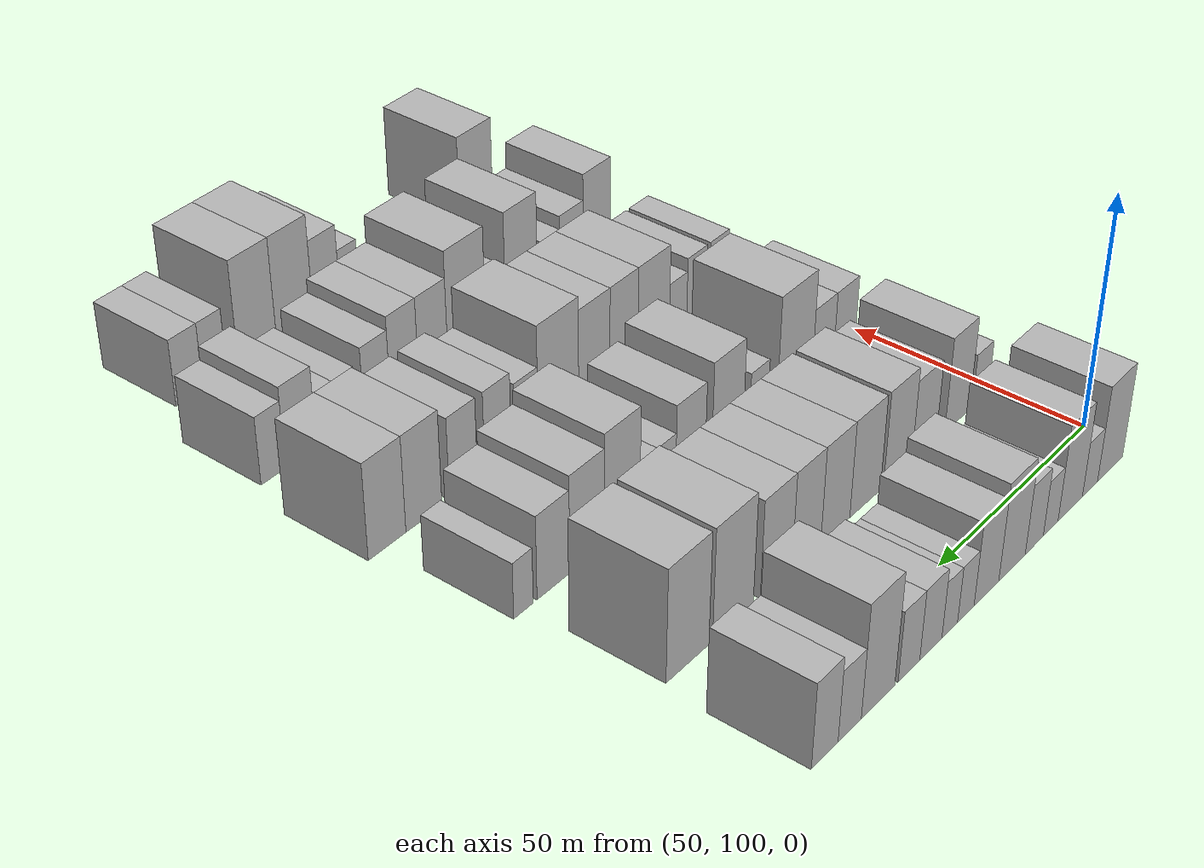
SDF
<sdf version="1.6">
 <world name="default">
  <model name="building_70">
   <static>1</static>
   <pose>50.0000 108.4797 0 0.000000 0.000000 0.000000</pose>
   <link name="link">
    <pose>0 0 10.50 0 0 0</pose>
    <collision name="collision"><geometry><box><size>20.0000 9.2453 21.0000</size></box></geometry></collision>
    <visual name="visual">
     <cast_shadows>0</cast_shadows>
     <geometry><box><size>20.0000 9.2453 21.0000</size></box></geometry>
     <material>
      <script>
       <uri>model://HANNAS_wall/materials/scripts</uri>
       <uri>model://HANNAS_wall/materials/textures</uri>
       <name>vrc/HANNAS_wall</name>
      </script>
     </material>
    </visual>
   </link>
  </model>
  <model name="building_71">
   <static>1</static>
   <pose>50.0000 115.8319 0 0.000000 0.000000 0.000000</pose>
   <link name="link">
    <pose>0 0 6.00 0 0 0</pose>
    <collision name="collision"><geometry><box><size>20.0000 5.4591 12.0000</size></box></geometry></collision>
    <visual name="visual">
     <cast_shadows>0</cast_shadows>
     <geometry><box><size>20.0000 5.4591 12.0000</size></box></geometry>
     <material>
      <script>
       <uri>model://HANNAS_wall/materials/scripts</uri>
       <uri>model://HANNAS_wall/materials/textures</uri>
       <name>vrc/HANNAS_wall</name>
      </script>
     </material>
    </visual>
   </link>
  </model>
  <model name="building_72">
   <static>1</static>
   <pose>50.0000 122.8837 0 0.000000 0.000000 0.000000</pose>
   <link name="link">
    <pose>0 0 10.50 0 0 0</pose>
    <collision name="collision"><geometry><box><size>20.0000 8.6444 21.0000</size></box></geometry></collision>
    <visual name="visual">
     <cast_shadows>0</cast_shadows>
     <geometry><box><size>20.0000 8.6444 21.0000</size></box></geometry>
     <material>
      <script>
       <uri>model://HANNAS_wall/materials/scripts</uri>
       <uri>model://HANNAS_wall/materials/textures</uri>
       <name>vrc/HANNAS_wall</name>
      </script>
     </material>
    </visual>
   </link>
  </model>
  <model name="building_73">
   <static>1</static>
   <pose>50.0000 129.7595 0 0.000000 0.000000 0.000000</pose>
   <link name="link">
    <pose>0 0 6.00 0 0 0</pose>
    <collision name="collision"><geometry><box><size>20.0000 5.1073 12.0000</size></box></geometry></collision>
    <visual name="visual">
     <cast_shadows>0</cast_shadows>
     <geometry><box><size>20.0000 5.1073 12.0000</size></box></geometry>
     <material>
      <script>
       <uri>model://HANNAS_wall/materials/scripts</uri>
       <uri>model://HANNAS_wall/materials/textures</uri>
       <name>vrc/HANNAS_wall</name>
      </script>
     </material>
    </visual>
   </link>
  </model>
  <model name="building_74">
   <static>1</static>
   <pose>50.0000 135.3687 0 0.000000 0.000000 0.000000</pose>
   <link name="link">
    <pose>0 0 7.50 0 0 0</pose>
    <collision name="collision"><geometry><box><size>20.0000 6.1111 15.0000</size></box></geometry></collision>
    <visual name="visual">
     <cast_shadows>0</cast_shadows>
     <geometry><box><size>20.0000 6.1111 15.0000</size></box></geometry>
     <material>
      <script>
       <uri>model://HANNAS_wall/materials/scripts</uri>
       <uri>model://HANNAS_wall/materials/textures</uri>
       <name>vrc/HANNAS_wall</name>
      </script>
     </material>
    </visual>
   </link>
  </model>
  <model name="building_75">
   <static>1</static>
   <pose>50.0000 142.8387 0 0.000000 0.000000 0.000000</pose>
   <link name="link">
    <pose>0 0 10.50 0 0 0</pose>
    <collision name="collision"><geometry><box><size>20.0000 8.8288 21.0000</size></box></geometry></collision>
    <visual name="visual">
     <cast_shadows>0</cast_shadows>
     <geometry><box><size>20.0000 8.8288 21.0000</size></box></geometry>
     <material>
      <script>
       <uri>model://HANNAS_wall/materials/scripts</uri>
       <uri>model://HANNAS_wall/materials/textures</uri>
       <name>vrc/HANNAS_wall</name>
      </script>
     </material>
    </visual>
   </link>
  </model>
  <model name="building_76">
   <static>1</static>
   <pose>50.0000 151.2692 0 0.000000 0.000000 0.000000</pose>
   <link name="link">
    <pose>0 0 9.00 0 0 0</pose>
    <collision name="collision"><geometry><box><size>20.0000 8.0323 18.0000</size></box></geometry></collision>
    <visual name="visual">
     <cast_shadows>0</cast_shadows>
     <geometry><box><size>20.0000 8.0323 18.0000</size></box></geometry>
     <material>
      <script>
       <uri>model://HANNAS_wall/materials/scripts</uri>
       <uri>model://HANNAS_wall/materials/textures</uri>
       <name>vrc/HANNAS_wall</name>
      </script>
     </material>
    </visual>
   </link>
  </model>
  <model name="building_77">
   <static>1</static>
   <pose>50.0000 157.8927 0 0.000000 0.000000 0.000000</pose>
   <link name="link">
    <pose>0 0 6.00 0 0 0</pose>
    <collision name="collision"><geometry><box><size>20.0000 5.2147 12.0000</size></box></geometry></collision>
    <visual name="visual">
     <cast_shadows>0</cast_shadows>
     <geometry><box><size>20.0000 5.2147 12.0000</size></box></geometry>
     <material>
      <script>
       <uri>model://HANNAS_wall/materials/scripts</uri>
       <uri>model://HANNAS_wall/materials/textures</uri>
       <name>vrc/HANNAS_wall</name>
      </script>
     </material>
    </visual>
   </link>
  </model>
  <model name="building_78">
   <static>1</static>
   <pose>50.0000 162.9480 0 0.000000 0.000000 0.000000</pose>
   <link name="link">
    <pose>0 0 6.00 0 0 0</pose>
    <collision name="collision"><geometry><box><size>20.0000 4.8960 12.0000</size></box></geometry></collision>
    <visual name="visual">
     <cast_shadows>0</cast_shadows>
     <geometry><box><size>20.0000 4.8960 12.0000</size></box></geometry>
     <material>
      <script>
       <uri>model://HANNAS_wall/materials/scripts</uri>
       <uri>model://HANNAS_wall/materials/textures</uri>
       <name>vrc/HANNAS_wall</name>
      </script>
     </material>
    </visual>
   </link>
  </model>
  <model name="building_79">
   <static>1</static>
   <pose>50.0000 168.7888 0 0.000000 0.000000 0.000000</pose>
   <link name="link">
    <pose>0 0 7.50 0 0 0</pose>
    <collision name="collision"><geometry><box><size>20.0000 6.7857 15.0000</size></box></geometry></collision>
    <visual name="visual">
     <cast_shadows>0</cast_shadows>
     <geometry><box><size>20.0000 6.7857 15.0000</size></box></geometry>
     <material>
      <script>
       <uri>model://HANNAS_wall/materials/scripts</uri>
       <uri>model://HANNAS_wall/materials/textures</uri>
       <name>vrc/HANNAS_wall</name>
      </script>
     </material>
    </visual>
   </link>
  </model>
  <model name="building_80">
   <static>1</static>
   <pose>50.0000 175.4133 0 0.000000 0.000000 0.000000</pose>
   <link name="link">
    <pose>0 0 7.50 0 0 0</pose>
    <collision name="collision"><geometry><box><size>20.0000 6.4632 15.0000</size></box></geometry></collision>
    <visual name="visual">
     <cast_shadows>0</cast_shadows>
     <geometry><box><size>20.0000 6.4632 15.0000</size></box></geometry>
     <material>
      <script>
       <uri>model://HANNAS_wall/materials/scripts</uri>
       <uri>model://HANNAS_wall/materials/textures</uri>
       <name>vrc/HANNAS_wall</name>
      </script>
     </material>
    </visual>
   </link>
  </model>
  <model name="building_81">
   <static>1</static>
   <pose>50.0000 184.4984 0 0.000000 0.000000 0.000000</pose>
   <link name="link">
    <pose>0 0 12.00 0 0 0</pose>
    <collision name="collision"><geometry><box><size>20.0000 9.7070 24.0000</size></box></geometry></collision>
    <visual name="visual">
     <cast_shadows>0</cast_shadows>
     <geometry><box><size>20.0000 9.7070 24.0000</size></box></geometry>
     <material>
      <script>
       <uri>model://HANNAS_wall/materials/scripts</uri>
       <uri>model://HANNAS_wall/materials/textures</uri>
       <name>vrc/HANNAS_wall</name>
      </script>
     </material>
    </visual>
   </link>
  </model>
  <model name="building_82">
   <static>1</static>
   <pose>50.0000 192.6373 0 0.000000 0.000000 0.000000</pose>
   <link name="link">
    <pose>0 0 7.50 0 0 0</pose>
    <collision name="collision"><geometry><box><size>20.0000 6.5709 15.0000</size></box></geometry></collision>
    <visual name="visual">
     <cast_shadows>0</cast_shadows>
     <geometry><box><size>20.0000 6.5709 15.0000</size></box></geometry>
     <material>
      <script>
       <uri>model://HANNAS_wall/materials/scripts</uri>
       <uri>model://HANNAS_wall/materials/textures</uri>
       <name>vrc/HANNAS_wall</name>
      </script>
     </material>
    </visual>
   </link>
  </model>
  <model name="building_83">
   <static>1</static>
   <pose>50.0000 199.5949 0 0.000000 0.000000 0.000000</pose>
   <link name="link">
    <pose>0 0 9.00 0 0 0</pose>
    <collision name="collision"><geometry><box><size>20.0000 7.3442 18.0000</size></box></geometry></collision>
    <visual name="visual">
     <cast_shadows>0</cast_shadows>
     <geometry><box><size>20.0000 7.3442 18.0000</size></box></geometry>
     <material>
      <script>
       <uri>model://HANNAS_wall/materials/scripts</uri>
       <uri>model://HANNAS_wall/materials/textures</uri>
       <name>vrc/HANNAS_wall</name>
      </script>
     </material>
    </visual>
   </link>
  </model>
  <model name="building_183">
   <static>1</static>
   <pose>79.0000 105.0208 0 0.000000 0.000000 0.000000</pose>
   <link name="link">
    <pose>0 0 6.00 0 0 0</pose>
    <collision name="collision"><geometry><box><size>20.0000 5.7940 12.0000</size></box></geometry></collision>
    <visual name="visual">
     <cast_shadows>0</cast_shadows>
     <geometry><box><size>20.0000 5.7940 12.0000</size></box></geometry>
     <material>
      <script>
       <uri>model://HANNAS_wall/materials/scripts</uri>
       <uri>model://HANNAS_wall/materials/textures</uri>
       <name>vrc/HANNAS_wall</name>
      </script>
     </material>
    </visual>
   </link>
  </model>
  <model name="building_184">
   <static>1</static>
   <pose>79.0000 113.2284 0 0.000000 0.000000 0.000000</pose>
   <link name="link">
    <pose>0 0 10.50 0 0 0</pose>
    <collision name="collision"><geometry><box><size>20.0000 8.6211 21.0000</size></box></geometry></collision>
    <visual name="visual">
     <cast_shadows>0</cast_shadows>
     <geometry><box><size>20.0000 8.6211 21.0000</size></box></geometry>
     <material>
      <script>
       <uri>model://HANNAS_wall/materials/scripts</uri>
       <uri>model://HANNAS_wall/materials/textures</uri>
       <name>vrc/HANNAS_wall</name>
      </script>
     </material>
    </visual>
   </link>
  </model>
  <model name="building_185">
   <static>1</static>
   <pose>79.0000 124.6637 0 0.000000 0.000000 0.000000</pose>
   <link name="link">
    <pose>0 0 9.00 0 0 0</pose>
    <collision name="collision"><geometry><box><size>20.0000 8.2496 18.0000</size></box></geometry></collision>
    <visual name="visual">
     <cast_shadows>0</cast_shadows>
     <geometry><box><size>20.0000 8.2496 18.0000</size></box></geometry>
     <material>
      <script>
       <uri>model://HANNAS_wall/materials/scripts</uri>
       <uri>model://HANNAS_wall/materials/textures</uri>
       <name>vrc/HANNAS_wall</name>
      </script>
     </material>
    </visual>
   </link>
  </model>
  <model name="building_186">
   <static>1</static>
   <pose>79.0000 133.4465 0 0.000000 0.000000 0.000000</pose>
   <link name="link">
    <pose>0 0 10.50 0 0 0</pose>
    <collision name="collision"><geometry><box><size>20.0000 9.3159 21.0000</size></box></geometry></collision>
    <visual name="visual">
     <cast_shadows>0</cast_shadows>
     <geometry><box><size>20.0000 9.3159 21.0000</size></box></geometry>
     <material>
      <script>
       <uri>model://HANNAS_wall/materials/scripts</uri>
       <uri>model://HANNAS_wall/materials/textures</uri>
       <name>vrc/HANNAS_wall</name>
      </script>
     </material>
    </visual>
   </link>
  </model>
  <model name="building_187">
   <static>1</static>
   <pose>79.0000 143.9744 0 0.000000 0.000000 0.000000</pose>
   <link name="link">
    <pose>0 0 10.50 0 0 0</pose>
    <collision name="collision"><geometry><box><size>20.0000 9.7400 21.0000</size></box></geometry></collision>
    <visual name="visual">
     <cast_shadows>0</cast_shadows>
     <geometry><box><size>20.0000 9.7400 21.0000</size></box></geometry>
     <material>
      <script>
       <uri>model://HANNAS_wall/materials/scripts</uri>
       <uri>model://HANNAS_wall/materials/textures</uri>
       <name>vrc/HANNAS_wall</name>
      </script>
     </material>
    </visual>
   </link>
  </model>
  <model name="building_188">
   <static>1</static>
   <pose>79.0000 153.3531 0 0.000000 0.000000 0.000000</pose>
   <link name="link">
    <pose>0 0 10.50 0 0 0</pose>
    <collision name="collision"><geometry><box><size>20.0000 9.0175 21.0000</size></box></geometry></collision>
    <visual name="visual">
     <cast_shadows>0</cast_shadows>
     <geometry><box><size>20.0000 9.0175 21.0000</size></box></geometry>
     <material>
      <script>
       <uri>model://HANNAS_wall/materials/scripts</uri>
       <uri>model://HANNAS_wall/materials/textures</uri>
       <name>vrc/HANNAS_wall</name>
      </script>
     </material>
    </visual>
   </link>
  </model>
  <model name="building_189">
   <static>1</static>
   <pose>79.0000 162.2272 0 0.000000 0.000000 0.000000</pose>
   <link name="link">
    <pose>0 0 10.50 0 0 0</pose>
    <collision name="collision"><geometry><box><size>20.0000 8.7307 21.0000</size></box></geometry></collision>
    <visual name="visual">
     <cast_shadows>0</cast_shadows>
     <geometry><box><size>20.0000 8.7307 21.0000</size></box></geometry>
     <material>
      <script>
       <uri>model://HANNAS_wall/materials/scripts</uri>
       <uri>model://HANNAS_wall/materials/textures</uri>
       <name>vrc/HANNAS_wall</name>
      </script>
     </material>
    </visual>
   </link>
  </model>
  <model name="building_190">
   <static>1</static>
   <pose>79.0000 171.2394 0 0.000000 0.000000 0.000000</pose>
   <link name="link">
    <pose>0 0 10.50 0 0 0</pose>
    <collision name="collision"><geometry><box><size>20.0000 9.2937 21.0000</size></box></geometry></collision>
    <visual name="visual">
     <cast_shadows>0</cast_shadows>
     <geometry><box><size>20.0000 9.2937 21.0000</size></box></geometry>
     <material>
      <script>
       <uri>model://HANNAS_wall/materials/scripts</uri>
       <uri>model://HANNAS_wall/materials/textures</uri>
       <name>vrc/HANNAS_wall</name>
      </script>
     </material>
    </visual>
   </link>
  </model>
  <model name="building_191">
   <static>1</static>
   <pose>79.0000 183.6266 0 0.000000 0.000000 0.000000</pose>
   <link name="link">
    <pose>0 0 12.00 0 0 0</pose>
    <collision name="collision"><geometry><box><size>20.0000 11.4806 24.0000</size></box></geometry></collision>
    <visual name="visual">
     <cast_shadows>0</cast_shadows>
     <geometry><box><size>20.0000 11.4806 24.0000</size></box></geometry>
     <material>
      <script>
       <uri>model://HANNAS_wall/materials/scripts</uri>
       <uri>model://HANNAS_wall/materials/textures</uri>
       <name>vrc/HANNAS_wall</name>
      </script>
     </material>
    </visual>
   </link>
  </model>
  <model name="building_192">
   <static>1</static>
   <pose>79.0000 196.1666 0 0.000000 0.000000 0.000000</pose>
   <link name="link">
    <pose>0 0 12.00 0 0 0</pose>
    <collision name="collision"><geometry><box><size>20.0000 11.5995 24.0000</size></box></geometry></collision>
    <visual name="visual">
     <cast_shadows>0</cast_shadows>
     <geometry><box><size>20.0000 11.5995 24.0000</size></box></geometry>
     <material>
      <script>
       <uri>model://HANNAS_wall/materials/scripts</uri>
       <uri>model://HANNAS_wall/materials/textures</uri>
       <name>vrc/HANNAS_wall</name>
      </script>
     </material>
    </visual>
   </link>
  </model>
  <model name="building_298">
   <static>1</static>
   <pose>108.0000 106.9651 0 0.000000 0.000000 0.000000</pose>
   <link name="link">
    <pose>0 0 7.50 0 0 0</pose>
    <collision name="collision"><geometry><box><size>20.0000 7.3845 15.0000</size></box></geometry></collision>
    <visual name="visual">
     <cast_shadows>0</cast_shadows>
     <geometry><box><size>20.0000 7.3845 15.0000</size></box></geometry>
     <material>
      <script>
       <uri>model://HANNAS_wall/materials/scripts</uri>
       <uri>model://HANNAS_wall/materials/textures</uri>
       <name>vrc/HANNAS_wall</name>
      </script>
     </material>
    </visual>
   </link>
  </model>
  <model name="building_299">
   <static>1</static>
   <pose>108.0000 114.3063 0 0.000000 0.000000 0.000000</pose>
   <link name="link">
    <pose>0 0 7.50 0 0 0</pose>
    <collision name="collision"><geometry><box><size>20.0000 7.2978 15.0000</size></box></geometry></collision>
    <visual name="visual">
     <cast_shadows>0</cast_shadows>
     <geometry><box><size>20.0000 7.2978 15.0000</size></box></geometry>
     <material>
      <script>
       <uri>model://HANNAS_wall/materials/scripts</uri>
       <uri>model://HANNAS_wall/materials/textures</uri>
       <name>vrc/HANNAS_wall</name>
      </script>
     </material>
    </visual>
   </link>
  </model>
  <model name="building_300">
   <static>1</static>
   <pose>108.0000 123.7310 0 0.000000 0.000000 0.000000</pose>
   <link name="link">
    <pose>0 0 12.00 0 0 0</pose>
    <collision name="collision"><geometry><box><size>20.0000 11.5516 24.0000</size></box></geometry></collision>
    <visual name="visual">
     <cast_shadows>0</cast_shadows>
     <geometry><box><size>20.0000 11.5516 24.0000</size></box></geometry>
     <material>
      <script>
       <uri>model://HANNAS_wall/materials/scripts</uri>
       <uri>model://HANNAS_wall/materials/textures</uri>
       <name>vrc/HANNAS_wall</name>
      </script>
     </material>
    </visual>
   </link>
  </model>
  <model name="building_301">
   <static>1</static>
   <pose>108.0000 135.4316 0 0.000000 0.000000 0.000000</pose>
   <link name="link">
    <pose>0 0 6.00 0 0 0</pose>
    <collision name="collision"><geometry><box><size>20.0000 5.8496 12.0000</size></box></geometry></collision>
    <visual name="visual">
     <cast_shadows>0</cast_shadows>
     <geometry><box><size>20.0000 5.8496 12.0000</size></box></geometry>
     <material>
      <script>
       <uri>model://HANNAS_wall/materials/scripts</uri>
       <uri>model://HANNAS_wall/materials/textures</uri>
       <name>vrc/HANNAS_wall</name>
      </script>
     </material>
    </visual>
   </link>
  </model>
  <model name="building_302">
   <static>1</static>
   <pose>108.0000 145.2150 0 0.000000 0.000000 0.000000</pose>
   <link name="link">
    <pose>0 0 10.50 0 0 0</pose>
    <collision name="collision"><geometry><box><size>20.0000 9.7173 21.0000</size></box></geometry></collision>
    <visual name="visual">
     <cast_shadows>0</cast_shadows>
     <geometry><box><size>20.0000 9.7173 21.0000</size></box></geometry>
     <material>
      <script>
       <uri>model://HANNAS_wall/materials/scripts</uri>
       <uri>model://HANNAS_wall/materials/textures</uri>
       <name>vrc/HANNAS_wall</name>
      </script>
     </material>
    </visual>
   </link>
  </model>
  <model name="building_303">
   <static>1</static>
   <pose>108.0000 156.4955 0 0.000000 0.000000 0.000000</pose>
   <link name="link">
    <pose>0 0 9.00 0 0 0</pose>
    <collision name="collision"><geometry><box><size>20.0000 8.8435 18.0000</size></box></geometry></collision>
    <visual name="visual">
     <cast_shadows>0</cast_shadows>
     <geometry><box><size>20.0000 8.8435 18.0000</size></box></geometry>
     <material>
      <script>
       <uri>model://HANNAS_wall/materials/scripts</uri>
       <uri>model://HANNAS_wall/materials/textures</uri>
       <name>vrc/HANNAS_wall</name>
      </script>
     </material>
    </visual>
   </link>
  </model>
  <model name="building_304">
   <static>1</static>
   <pose>108.0000 163.6061 0 0.000000 0.000000 0.000000</pose>
   <link name="link">
    <pose>0 0 6.00 0 0 0</pose>
    <collision name="collision"><geometry><box><size>20.0000 5.3777 12.0000</size></box></geometry></collision>
    <visual name="visual">
     <cast_shadows>0</cast_shadows>
     <geometry><box><size>20.0000 5.3777 12.0000</size></box></geometry>
     <material>
      <script>
       <uri>model://HANNAS_wall/materials/scripts</uri>
       <uri>model://HANNAS_wall/materials/textures</uri>
       <name>vrc/HANNAS_wall</name>
      </script>
     </material>
    </visual>
   </link>
  </model>
  <model name="building_305">
   <static>1</static>
   <pose>108.0000 168.7678 0 0.000000 0.000000 0.000000</pose>
   <link name="link">
    <pose>0 0 6.00 0 0 0</pose>
    <collision name="collision"><geometry><box><size>20.0000 4.9457 12.0000</size></box></geometry></collision>
    <visual name="visual">
     <cast_shadows>0</cast_shadows>
     <geometry><box><size>20.0000 4.9457 12.0000</size></box></geometry>
     <material>
      <script>
       <uri>model://HANNAS_wall/materials/scripts</uri>
       <uri>model://HANNAS_wall/materials/textures</uri>
       <name>vrc/HANNAS_wall</name>
      </script>
     </material>
    </visual>
   </link>
  </model>
  <model name="building_306">
   <static>1</static>
   <pose>108.0000 176.2402 0 0.000000 0.000000 0.000000</pose>
   <link name="link">
    <pose>0 0 12.00 0 0 0</pose>
    <collision name="collision"><geometry><box><size>20.0000 9.9991 24.0000</size></box></geometry></collision>
    <visual name="visual">
     <cast_shadows>0</cast_shadows>
     <geometry><box><size>20.0000 9.9991 24.0000</size></box></geometry>
     <material>
      <script>
       <uri>model://HANNAS_wall/materials/scripts</uri>
       <uri>model://HANNAS_wall/materials/textures</uri>
       <name>vrc/HANNAS_wall</name>
      </script>
     </material>
    </visual>
   </link>
  </model>
  <model name="building_307">
   <static>1</static>
   <pose>108.0000 185.9538 0 0.000000 0.000000 0.000000</pose>
   <link name="link">
    <pose>0 0 10.50 0 0 0</pose>
    <collision name="collision"><geometry><box><size>20.0000 9.4281 21.0000</size></box></geometry></collision>
    <visual name="visual">
     <cast_shadows>0</cast_shadows>
     <geometry><box><size>20.0000 9.4281 21.0000</size></box></geometry>
     <material>
      <script>
       <uri>model://HANNAS_wall/materials/scripts</uri>
       <uri>model://HANNAS_wall/materials/textures</uri>
       <name>vrc/HANNAS_wall</name>
      </script>
     </material>
    </visual>
   </link>
  </model>
  <model name="building_308">
   <static>1</static>
   <pose>108.0000 195.0118 0 0.000000 0.000000 0.000000</pose>
   <link name="link">
    <pose>0 0 9.00 0 0 0</pose>
    <collision name="collision"><geometry><box><size>20.0000 8.6878 18.0000</size></box></geometry></collision>
    <visual name="visual">
     <cast_shadows>0</cast_shadows>
     <geometry><box><size>20.0000 8.6878 18.0000</size></box></geometry>
     <material>
      <script>
       <uri>model://HANNAS_wall/materials/scripts</uri>
       <uri>model://HANNAS_wall/materials/textures</uri>
       <name>vrc/HANNAS_wall</name>
      </script>
     </material>
    </visual>
   </link>
  </model>
  <model name="building_309">
   <static>1</static>
   <pose>108.0000 202.8847 0 0.000000 0.000000 0.000000</pose>
   <link name="link">
    <pose>0 0 6.00 0 0 0</pose>
    <collision name="collision"><geometry><box><size>20.0000 5.0580 12.0000</size></box></geometry></collision>
    <visual name="visual">
     <cast_shadows>0</cast_shadows>
     <geometry><box><size>20.0000 5.0580 12.0000</size></box></geometry>
     <material>
      <script>
       <uri>model://HANNAS_wall/materials/scripts</uri>
       <uri>model://HANNAS_wall/materials/textures</uri>
       <name>vrc/HANNAS_wall</name>
      </script>
     </material>
    </visual>
   </link>
  </model>
  <model name="building_405">
   <static>1</static>
   <pose>137.0000 108.3462 0 0.000000 0.000000 0.000000</pose>
   <link name="link">
    <pose>0 0 7.50 0 0 0</pose>
    <collision name="collision"><geometry><box><size>20.0000 6.1600 15.0000</size></box></geometry></collision>
    <visual name="visual">
     <cast_shadows>0</cast_shadows>
     <geometry><box><size>20.0000 6.1600 15.0000</size></box></geometry>
     <material>
      <script>
       <uri>model://HANNAS_wall/materials/scripts</uri>
       <uri>model://HANNAS_wall/materials/textures</uri>
       <name>vrc/HANNAS_wall</name>
      </script>
     </material>
    </visual>
   </link>
  </model>
  <model name="building_406">
   <static>1</static>
   <pose>137.0000 115.5920 0 0.000000 0.000000 0.000000</pose>
   <link name="link">
    <pose>0 0 7.50 0 0 0</pose>
    <collision name="collision"><geometry><box><size>20.0000 6.3317 15.0000</size></box></geometry></collision>
    <visual name="visual">
     <cast_shadows>0</cast_shadows>
     <geometry><box><size>20.0000 6.3317 15.0000</size></box></geometry>
     <material>
      <script>
       <uri>model://HANNAS_wall/materials/scripts</uri>
       <uri>model://HANNAS_wall/materials/textures</uri>
       <name>vrc/HANNAS_wall</name>
      </script>
     </material>
    </visual>
   </link>
  </model>
  <model name="building_407">
   <static>1</static>
   <pose>137.0000 121.5778 0 0.000000 0.000000 0.000000</pose>
   <link name="link">
    <pose>0 0 6.00 0 0 0</pose>
    <collision name="collision"><geometry><box><size>20.0000 5.6400 12.0000</size></box></geometry></collision>
    <visual name="visual">
     <cast_shadows>0</cast_shadows>
     <geometry><box><size>20.0000 5.6400 12.0000</size></box></geometry>
     <material>
      <script>
       <uri>model://HANNAS_wall/materials/scripts</uri>
       <uri>model://HANNAS_wall/materials/textures</uri>
       <name>vrc/HANNAS_wall</name>
      </script>
     </material>
    </visual>
   </link>
  </model>
  <model name="building_408">
   <static>1</static>
   <pose>137.0000 129.3278 0 0.000000 0.000000 0.000000</pose>
   <link name="link">
    <pose>0 0 10.50 0 0 0</pose>
    <collision name="collision"><geometry><box><size>20.0000 9.8599 21.0000</size></box></geometry></collision>
    <visual name="visual">
     <cast_shadows>0</cast_shadows>
     <geometry><box><size>20.0000 9.8599 21.0000</size></box></geometry>
     <material>
      <script>
       <uri>model://HANNAS_wall/materials/scripts</uri>
       <uri>model://HANNAS_wall/materials/textures</uri>
       <name>vrc/HANNAS_wall</name>
      </script>
     </material>
    </visual>
   </link>
  </model>
  <model name="building_409">
   <static>1</static>
   <pose>137.0000 138.5922 0 0.000000 0.000000 0.000000</pose>
   <link name="link">
    <pose>0 0 10.50 0 0 0</pose>
    <collision name="collision"><geometry><box><size>20.0000 8.6690 21.0000</size></box></geometry></collision>
    <visual name="visual">
     <cast_shadows>0</cast_shadows>
     <geometry><box><size>20.0000 8.6690 21.0000</size></box></geometry>
     <material>
      <script>
       <uri>model://HANNAS_wall/materials/scripts</uri>
       <uri>model://HANNAS_wall/materials/textures</uri>
       <name>vrc/HANNAS_wall</name>
      </script>
     </material>
    </visual>
   </link>
  </model>
  <model name="building_410">
   <static>1</static>
   <pose>137.0000 147.5931 0 0.000000 0.000000 0.000000</pose>
   <link name="link">
    <pose>0 0 10.50 0 0 0</pose>
    <collision name="collision"><geometry><box><size>20.0000 9.3328 21.0000</size></box></geometry></collision>
    <visual name="visual">
     <cast_shadows>0</cast_shadows>
     <geometry><box><size>20.0000 9.3328 21.0000</size></box></geometry>
     <material>
      <script>
       <uri>model://HANNAS_wall/materials/scripts</uri>
       <uri>model://HANNAS_wall/materials/textures</uri>
       <name>vrc/HANNAS_wall</name>
      </script>
     </material>
    </visual>
   </link>
  </model>
  <model name="building_411">
   <static>1</static>
   <pose>137.0000 158.1646 0 0.000000 0.000000 0.000000</pose>
   <link name="link">
    <pose>0 0 12.00 0 0 0</pose>
    <collision name="collision"><geometry><box><size>20.0000 11.8102 24.0000</size></box></geometry></collision>
    <visual name="visual">
     <cast_shadows>0</cast_shadows>
     <geometry><box><size>20.0000 11.8102 24.0000</size></box></geometry>
     <material>
      <script>
       <uri>model://HANNAS_wall/materials/scripts</uri>
       <uri>model://HANNAS_wall/materials/textures</uri>
       <name>vrc/HANNAS_wall</name>
      </script>
     </material>
    </visual>
   </link>
  </model>
  <model name="building_412">
   <static>1</static>
   <pose>137.0000 167.3487 0 0.000000 0.000000 0.000000</pose>
   <link name="link">
    <pose>0 0 7.50 0 0 0</pose>
    <collision name="collision"><geometry><box><size>20.0000 6.5581 15.0000</size></box></geometry></collision>
    <visual name="visual">
     <cast_shadows>0</cast_shadows>
     <geometry><box><size>20.0000 6.5581 15.0000</size></box></geometry>
     <material>
      <script>
       <uri>model://HANNAS_wall/materials/scripts</uri>
       <uri>model://HANNAS_wall/materials/textures</uri>
       <name>vrc/HANNAS_wall</name>
      </script>
     </material>
    </visual>
   </link>
  </model>
  <model name="building_413">
   <static>1</static>
   <pose>137.0000 175.3025 0 0.000000 0.000000 0.000000</pose>
   <link name="link">
    <pose>0 0 9.00 0 0 0</pose>
    <collision name="collision"><geometry><box><size>20.0000 7.3494 18.0000</size></box></geometry></collision>
    <visual name="visual">
     <cast_shadows>0</cast_shadows>
     <geometry><box><size>20.0000 7.3494 18.0000</size></box></geometry>
     <material>
      <script>
       <uri>model://HANNAS_wall/materials/scripts</uri>
       <uri>model://HANNAS_wall/materials/textures</uri>
       <name>vrc/HANNAS_wall</name>
      </script>
     </material>
    </visual>
   </link>
  </model>
  <model name="building_414">
   <static>1</static>
   <pose>137.0000 184.7679 0 0.000000 0.000000 0.000000</pose>
   <link name="link">
    <pose>0 0 9.00 0 0 0</pose>
    <collision name="collision"><geometry><box><size>20.0000 7.5813 18.0000</size></box></geometry></collision>
    <visual name="visual">
     <cast_shadows>0</cast_shadows>
     <geometry><box><size>20.0000 7.5813 18.0000</size></box></geometry>
     <material>
      <script>
       <uri>model://HANNAS_wall/materials/scripts</uri>
       <uri>model://HANNAS_wall/materials/textures</uri>
       <name>vrc/HANNAS_wall</name>
      </script>
     </material>
    </visual>
   </link>
  </model>
  <model name="building_415">
   <static>1</static>
   <pose>137.0000 195.2548 0 0.000000 0.000000 0.000000</pose>
   <link name="link">
    <pose>0 0 10.50 0 0 0</pose>
    <collision name="collision"><geometry><box><size>20.0000 9.3926 21.0000</size></box></geometry></collision>
    <visual name="visual">
     <cast_shadows>0</cast_shadows>
     <geometry><box><size>20.0000 9.3926 21.0000</size></box></geometry>
     <material>
      <script>
       <uri>model://HANNAS_wall/materials/scripts</uri>
       <uri>model://HANNAS_wall/materials/textures</uri>
       <name>vrc/HANNAS_wall</name>
      </script>
     </material>
    </visual>
   </link>
  </model>
  <model name="building_416">
   <static>1</static>
   <pose>137.0000 204.7293 0 0.000000 0.000000 0.000000</pose>
   <link name="link">
    <pose>0 0 10.50 0 0 0</pose>
    <collision name="collision"><geometry><box><size>20.0000 9.5563 21.0000</size></box></geometry></collision>
    <visual name="visual">
     <cast_shadows>0</cast_shadows>
     <geometry><box><size>20.0000 9.5563 21.0000</size></box></geometry>
     <material>
      <script>
       <uri>model://HANNAS_wall/materials/scripts</uri>
       <uri>model://HANNAS_wall/materials/textures</uri>
       <name>vrc/HANNAS_wall</name>
      </script>
     </material>
    </visual>
   </link>
  </model>
  <model name="building_519">
   <static>1</static>
   <pose>166.0000 110.4397 0 0.000000 0.000000 0.000000</pose>
   <link name="link">
    <pose>0 0 10.50 0 0 0</pose>
    <collision name="collision"><geometry><box><size>20.0000 8.8137 21.0000</size></box></geometry></collision>
    <visual name="visual">
     <cast_shadows>0</cast_shadows>
     <geometry><box><size>20.0000 8.8137 21.0000</size></box></geometry>
     <material>
      <script>
       <uri>model://HANNAS_wall/materials/scripts</uri>
       <uri>model://HANNAS_wall/materials/textures</uri>
       <name>vrc/HANNAS_wall</name>
      </script>
     </material>
    </visual>
   </link>
  </model>
  <model name="building_520">
   <static>1</static>
   <pose>166.0000 118.5951 0 0.000000 0.000000 0.000000</pose>
   <link name="link">
    <pose>0 0 7.50 0 0 0</pose>
    <collision name="collision"><geometry><box><size>20.0000 7.4972 15.0000</size></box></geometry></collision>
    <visual name="visual">
     <cast_shadows>0</cast_shadows>
     <geometry><box><size>20.0000 7.4972 15.0000</size></box></geometry>
     <material>
      <script>
       <uri>model://HANNAS_wall/materials/scripts</uri>
       <uri>model://HANNAS_wall/materials/textures</uri>
       <name>vrc/HANNAS_wall</name>
      </script>
     </material>
    </visual>
   </link>
  </model>
  <model name="building_521">
   <static>1</static>
   <pose>166.0000 125.3193 0 0.000000 0.000000 0.000000</pose>
   <link name="link">
    <pose>0 0 6.00 0 0 0</pose>
    <collision name="collision"><geometry><box><size>20.0000 5.9512 12.0000</size></box></geometry></collision>
    <visual name="visual">
     <cast_shadows>0</cast_shadows>
     <geometry><box><size>20.0000 5.9512 12.0000</size></box></geometry>
     <material>
      <script>
       <uri>model://HANNAS_wall/materials/scripts</uri>
       <uri>model://HANNAS_wall/materials/textures</uri>
       <name>vrc/HANNAS_wall</name>
      </script>
     </material>
    </visual>
   </link>
  </model>
  <model name="building_522">
   <static>1</static>
   <pose>166.0000 134.1746 0 0.000000 0.000000 0.000000</pose>
   <link name="link">
    <pose>0 0 12.00 0 0 0</pose>
    <collision name="collision"><geometry><box><size>20.0000 9.7593 24.0000</size></box></geometry></collision>
    <visual name="visual">
     <cast_shadows>0</cast_shadows>
     <geometry><box><size>20.0000 9.7593 24.0000</size></box></geometry>
     <material>
      <script>
       <uri>model://HANNAS_wall/materials/scripts</uri>
       <uri>model://HANNAS_wall/materials/textures</uri>
       <name>vrc/HANNAS_wall</name>
      </script>
     </material>
    </visual>
   </link>
  </model>
  <model name="building_523">
   <static>1</static>
   <pose>166.0000 142.0498 0 0.000000 0.000000 0.000000</pose>
   <link name="link">
    <pose>0 0 6.00 0 0 0</pose>
    <collision name="collision"><geometry><box><size>20.0000 5.9911 12.0000</size></box></geometry></collision>
    <visual name="visual">
     <cast_shadows>0</cast_shadows>
     <geometry><box><size>20.0000 5.9911 12.0000</size></box></geometry>
     <material>
      <script>
       <uri>model://HANNAS_wall/materials/scripts</uri>
       <uri>model://HANNAS_wall/materials/textures</uri>
       <name>vrc/HANNAS_wall</name>
      </script>
     </material>
    </visual>
   </link>
  </model>
  <model name="building_524">
   <static>1</static>
   <pose>166.0000 150.5981 0 0.000000 0.000000 0.000000</pose>
   <link name="link">
    <pose>0 0 12.00 0 0 0</pose>
    <collision name="collision"><geometry><box><size>20.0000 11.1055 24.0000</size></box></geometry></collision>
    <visual name="visual">
     <cast_shadows>0</cast_shadows>
     <geometry><box><size>20.0000 11.1055 24.0000</size></box></geometry>
     <material>
      <script>
       <uri>model://HANNAS_wall/materials/scripts</uri>
       <uri>model://HANNAS_wall/materials/textures</uri>
       <name>vrc/HANNAS_wall</name>
      </script>
     </material>
    </visual>
   </link>
  </model>
  <model name="building_525">
   <static>1</static>
   <pose>166.0000 160.3175 0 0.000000 0.000000 0.000000</pose>
   <link name="link">
    <pose>0 0 9.00 0 0 0</pose>
    <collision name="collision"><geometry><box><size>20.0000 8.3331 18.0000</size></box></geometry></collision>
    <visual name="visual">
     <cast_shadows>0</cast_shadows>
     <geometry><box><size>20.0000 8.3331 18.0000</size></box></geometry>
     <material>
      <script>
       <uri>model://HANNAS_wall/materials/scripts</uri>
       <uri>model://HANNAS_wall/materials/textures</uri>
       <name>vrc/HANNAS_wall</name>
      </script>
     </material>
    </visual>
   </link>
  </model>
  <model name="building_526">
   <static>1</static>
   <pose>166.0000 168.4263 0 0.000000 0.000000 0.000000</pose>
   <link name="link">
    <pose>0 0 9.00 0 0 0</pose>
    <collision name="collision"><geometry><box><size>20.0000 7.8845 18.0000</size></box></geometry></collision>
    <visual name="visual">
     <cast_shadows>0</cast_shadows>
     <geometry><box><size>20.0000 7.8845 18.0000</size></box></geometry>
     <material>
      <script>
       <uri>model://HANNAS_wall/materials/scripts</uri>
       <uri>model://HANNAS_wall/materials/textures</uri>
       <name>vrc/HANNAS_wall</name>
      </script>
     </material>
    </visual>
   </link>
  </model>
  <model name="building_527">
   <static>1</static>
   <pose>166.0000 175.9674 0 0.000000 0.000000 0.000000</pose>
   <link name="link">
    <pose>0 0 7.50 0 0 0</pose>
    <collision name="collision"><geometry><box><size>20.0000 7.1979 15.0000</size></box></geometry></collision>
    <visual name="visual">
     <cast_shadows>0</cast_shadows>
     <geometry><box><size>20.0000 7.1979 15.0000</size></box></geometry>
     <material>
      <script>
       <uri>model://HANNAS_wall/materials/scripts</uri>
       <uri>model://HANNAS_wall/materials/textures</uri>
       <name>vrc/HANNAS_wall</name>
      </script>
     </material>
    </visual>
   </link>
  </model>
  <model name="building_528">
   <static>1</static>
   <pose>166.0000 184.3919 0 0.000000 0.000000 0.000000</pose>
   <link name="link">
    <pose>0 0 6.00 0 0 0</pose>
    <collision name="collision"><geometry><box><size>20.0000 5.6510 12.0000</size></box></geometry></collision>
    <visual name="visual">
     <cast_shadows>0</cast_shadows>
     <geometry><box><size>20.0000 5.6510 12.0000</size></box></geometry>
     <material>
      <script>
       <uri>model://HANNAS_wall/materials/scripts</uri>
       <uri>model://HANNAS_wall/materials/textures</uri>
       <name>vrc/HANNAS_wall</name>
      </script>
     </material>
    </visual>
   </link>
  </model>
  <model name="building_529">
   <static>1</static>
   <pose>166.0000 189.6509 0 0.000000 0.000000 0.000000</pose>
   <link name="link">
    <pose>0 0 6.00 0 0 0</pose>
    <collision name="collision"><geometry><box><size>20.0000 4.8671 12.0000</size></box></geometry></collision>
    <visual name="visual">
     <cast_shadows>0</cast_shadows>
     <geometry><box><size>20.0000 4.8671 12.0000</size></box></geometry>
     <material>
      <script>
       <uri>model://HANNAS_wall/materials/scripts</uri>
       <uri>model://HANNAS_wall/materials/textures</uri>
       <name>vrc/HANNAS_wall</name>
      </script>
     </material>
    </visual>
   </link>
  </model>
  <model name="building_530">
   <static>1</static>
   <pose>166.0000 196.0736 0 0.000000 0.000000 0.000000</pose>
   <link name="link">
    <pose>0 0 9.00 0 0 0</pose>
    <collision name="collision"><geometry><box><size>20.0000 7.9782 18.0000</size></box></geometry></collision>
    <visual name="visual">
     <cast_shadows>0</cast_shadows>
     <geometry><box><size>20.0000 7.9782 18.0000</size></box></geometry>
     <material>
      <script>
       <uri>model://HANNAS_wall/materials/scripts</uri>
       <uri>model://HANNAS_wall/materials/textures</uri>
       <name>vrc/HANNAS_wall</name>
      </script>
     </material>
    </visual>
   </link>
  </model>
  <model name="building_531">
   <static>1</static>
   <pose>166.0000 203.1543 0 0.000000 0.000000 0.000000</pose>
   <link name="link">
    <pose>0 0 7.50 0 0 0</pose>
    <collision name="collision"><geometry><box><size>20.0000 6.1832 15.0000</size></box></geometry></collision>
    <visual name="visual">
     <cast_shadows>0</cast_shadows>
     <geometry><box><size>20.0000 6.1832 15.0000</size></box></geometry>
     <material>
      <script>
       <uri>model://HANNAS_wall/materials/scripts</uri>
       <uri>model://HANNAS_wall/materials/textures</uri>
       <name>vrc/HANNAS_wall</name>
      </script>
     </material>
    </visual>
   </link>
  </model>
  <model name="building_636">
   <static>1</static>
   <pose>195.0000 114.3319 0 0.000000 0.000000 0.000000</pose>
   <link name="link">
    <pose>0 0 10.50 0 0 0</pose>
    <collision name="collision"><geometry><box><size>20.0000 10.4765 21.0000</size></box></geometry></collision>
    <visual name="visual">
     <cast_shadows>0</cast_shadows>
     <geometry><box><size>20.0000 10.4765 21.0000</size></box></geometry>
     <material>
      <script>
       <uri>model://HANNAS_wall/materials/scripts</uri>
       <uri>model://HANNAS_wall/materials/textures</uri>
       <name>vrc/HANNAS_wall</name>
      </script>
     </material>
    </visual>
   </link>
  </model>
  <model name="building_637">
   <static>1</static>
   <pose>195.0000 152.6826 0 0.000000 0.000000 0.000000</pose>
   <link name="link">
    <pose>0 0 6.00 0 0 0</pose>
    <collision name="collision"><geometry><box><size>20.0000 5.4083 12.0000</size></box></geometry></collision>
    <visual name="visual">
     <cast_shadows>0</cast_shadows>
     <geometry><box><size>20.0000 5.4083 12.0000</size></box></geometry>
     <material>
      <script>
       <uri>model://HANNAS_wall/materials/scripts</uri>
       <uri>model://HANNAS_wall/materials/textures</uri>
       <name>vrc/HANNAS_wall</name>
      </script>
     </material>
    </visual>
   </link>
  </model>
  <model name="building_638">
   <static>1</static>
   <pose>195.0000 159.1443 0 0.000000 0.000000 0.000000</pose>
   <link name="link">
    <pose>0 0 9.00 0 0 0</pose>
    <collision name="collision"><geometry><box><size>20.0000 7.5151 18.0000</size></box></geometry></collision>
    <visual name="visual">
     <cast_shadows>0</cast_shadows>
     <geometry><box><size>20.0000 7.5151 18.0000</size></box></geometry>
     <material>
      <script>
       <uri>model://HANNAS_wall/materials/scripts</uri>
       <uri>model://HANNAS_wall/materials/textures</uri>
       <name>vrc/HANNAS_wall</name>
      </script>
     </material>
    </visual>
   </link>
  </model>
  <model name="building_639">
   <static>1</static>
   <pose>195.0000 167.9920 0 0.000000 0.000000 0.000000</pose>
   <link name="link">
    <pose>0 0 12.00 0 0 0</pose>
    <collision name="collision"><geometry><box><size>20.0000 10.1802 24.0000</size></box></geometry></collision>
    <visual name="visual">
     <cast_shadows>0</cast_shadows>
     <geometry><box><size>20.0000 10.1802 24.0000</size></box></geometry>
     <material>
      <script>
       <uri>model://HANNAS_wall/materials/scripts</uri>
       <uri>model://HANNAS_wall/materials/textures</uri>
       <name>vrc/HANNAS_wall</name>
      </script>
     </material>
    </visual>
   </link>
  </model>
  <model name="building_640">
   <static>1</static>
   <pose>195.0000 178.1924 0 0.000000 0.000000 0.000000</pose>
   <link name="link">
    <pose>0 0 12.00 0 0 0</pose>
    <collision name="collision"><geometry><box><size>20.0000 10.2207 24.0000</size></box></geometry></collision>
    <visual name="visual">
     <cast_shadows>0</cast_shadows>
     <geometry><box><size>20.0000 10.2207 24.0000</size></box></geometry>
     <material>
      <script>
       <uri>model://HANNAS_wall/materials/scripts</uri>
       <uri>model://HANNAS_wall/materials/textures</uri>
       <name>vrc/HANNAS_wall</name>
      </script>
     </material>
    </visual>
   </link>
  </model>
  <model name="building_641">
   <static>1</static>
   <pose>195.0000 189.4045 0 0.000000 0.000000 0.000000</pose>
   <link name="link">
    <pose>0 0 7.50 0 0 0</pose>
    <collision name="collision"><geometry><box><size>20.0000 6.2034 15.0000</size></box></geometry></collision>
    <visual name="visual">
     <cast_shadows>0</cast_shadows>
     <geometry><box><size>20.0000 6.2034 15.0000</size></box></geometry>
     <material>
      <script>
       <uri>model://HANNAS_wall/materials/scripts</uri>
       <uri>model://HANNAS_wall/materials/textures</uri>
       <name>vrc/HANNAS_wall</name>
      </script>
     </material>
    </visual>
   </link>
  </model>
  <model name="building_642">
   <static>1</static>
   <pose>195.0000 195.9960 0 0.000000 0.000000 0.000000</pose>
   <link name="link">
    <pose>0 0 7.50 0 0 0</pose>
    <collision name="collision"><geometry><box><size>20.0000 6.9796 15.0000</size></box></geometry></collision>
    <visual name="visual">
     <cast_shadows>0</cast_shadows>
     <geometry><box><size>20.0000 6.9796 15.0000</size></box></geometry>
     <material>
      <script>
       <uri>model://HANNAS_wall/materials/scripts</uri>
       <uri>model://HANNAS_wall/materials/textures</uri>
       <name>vrc/HANNAS_wall</name>
      </script>
     </material>
    </visual>
   </link>
  </model>
 </world>
</sdf>
